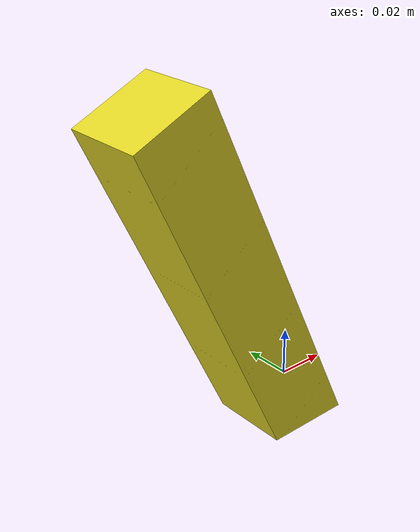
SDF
<?xml version="1.0" ?>
<sdf version="1.5">
  <model name="clap_jaune">
    <link name="clap">
      <self_collide>1</self_collide>
      <inertial>
		<pose>-0.047 -0.015 0.065 0 0 0</pose>
		<mass>0.15</mass>
        <inertia>
            <ixx>0.0002222088631592061</ixx>
            <ixy>0.00009576025452225838</ixy>
            <ixz>0</ixz>
            <iyy>0.00026807677377627993</iyy>
            <iyz>0</iyz>
            <izz>0.00006835231764351083</izz>
        </inertia>
	  </inertial>
	<collision name="collision">
	  <geometry>
	    <mesh>
		<scale>0.001 0.001 0.001</scale>
		<uri>model://clap_jaune/meshes/clap.dae</uri>
	    </mesh>
	  </geometry>
	</collision>
	<visual name="visual">
	  <geometry>
	    <mesh>
		<scale>0.001 0.001 0.001</scale>
		<uri>model://clap_jaune/meshes/clap.dae</uri>
	    </mesh>
	  </geometry>
        <material>
          <script>
            <uri>file://media/materials/scripts/gazebo.material</uri>
            <name>Gazebo/Yellow</name>
          </script>
        </material>
	</visual>
      </link>
      <joint type="revolute" name="hinge">
	<pose>0 0 0 0 -2.007 0</pose><!-- 2.007 rad = 115 degres-->
	<child>clap</child>
	<parent>world</parent>
	<axis>
	   <xyz>0 1 0</xyz>
	   <limit>
		<upper>2.007</upper>
		<lower>0</lower>
	   </limit>
	</axis>

       </joint>
    </model>
 </sdf>
